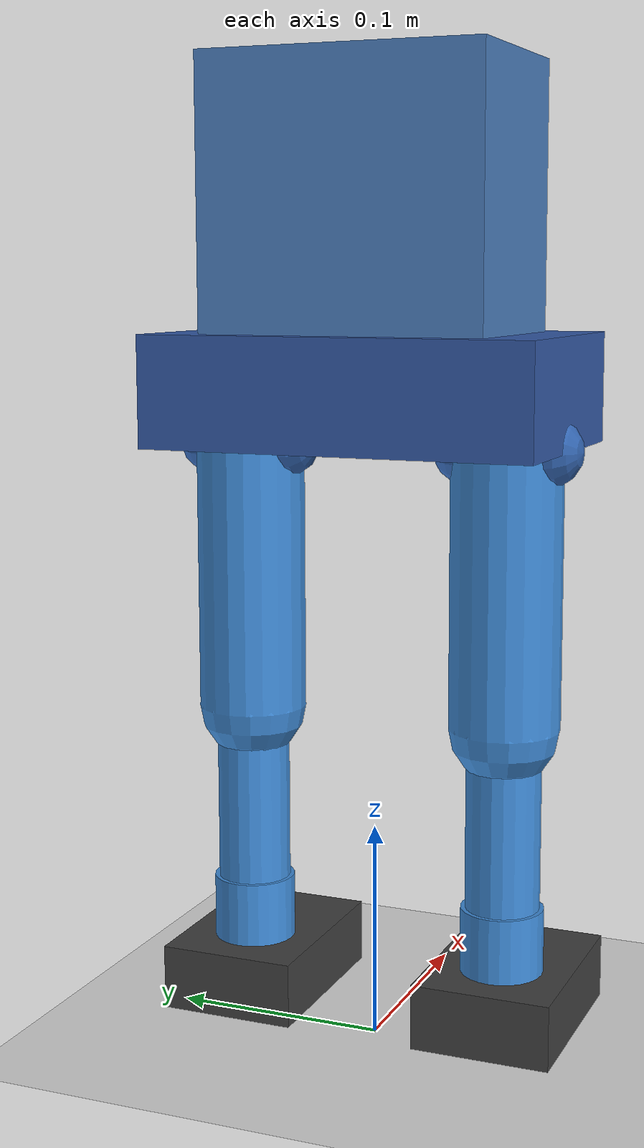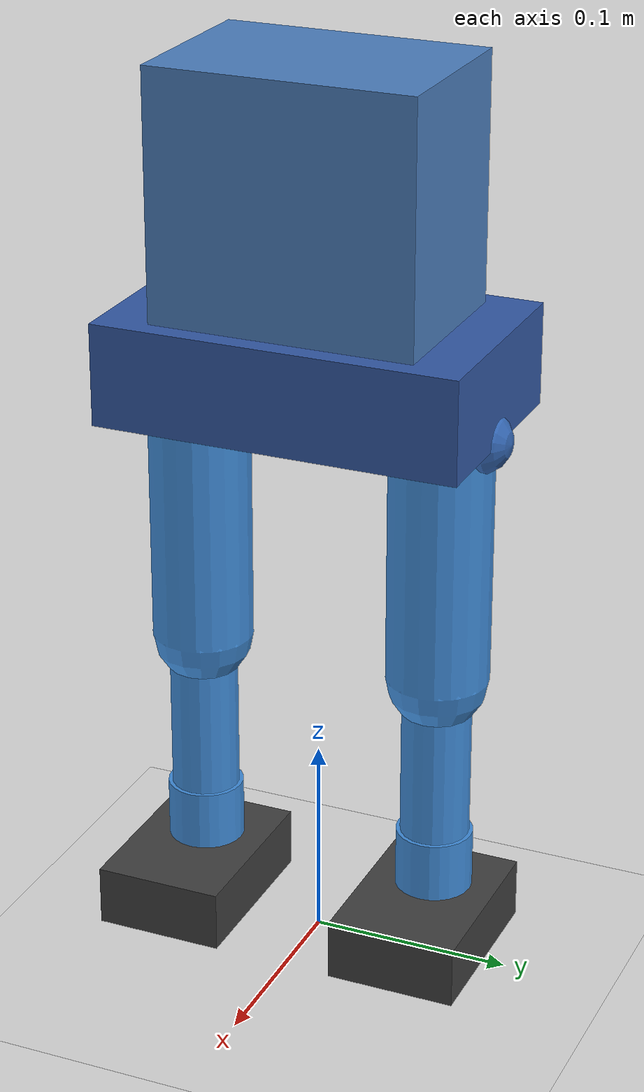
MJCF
<mujoco model="digital_twin_v0_1">
    <compiler angle="degree" autolimits="true"/>

    <option
        timestep="0.002"
        gravity="0 0 -9.81"
        integrator="implicitfast"/>

    <default>
        <joint
            type="hinge"
            damping="0.2"
            armature="0.005"/>

        <geom
            density="500"
            friction="0.8 0.1 0.1"
            rgba="0.25 0.55 0.85 1"/>
    </default>

    <worldbody>
        <light
            pos="0 0 2"
            dir="0 0 -1"/>

        <geom
            name="floor"
            type="plane"
            size="2 2 0.05"
            rgba="0.85 0.85 0.85 1"/>

        <body
            name="pelvis_root"
            pos="0 0 0.303">

            <freejoint name="root_freejoint"/>

            <geom
                name="pelvis_core_geom"
                type="box"
                size="0.025 0.03 0.015"
                density="900"
                rgba="0.16 0.28 0.55 1"/>

            <body name="pelvis">
                <geom
                    name="pelvis_geom"
                    type="box"
                    size="0.055 0.09 0.025"
                    density="900"
                    rgba="0.20 0.35 0.65 1"/>

                <body
                    name="trunk"
                    pos="0 0 0.085">

                    <geom
                        name="trunk_geom"
                        type="box"
                        size="0.045 0.065 0.06"
                        density="600"
                        rgba="0.30 0.50 0.75 1"/>
                </body>

                <body
                    name="left_hip_yaw_link"
                    pos="0 0.062 -0.025">

                    <joint
                        name="left_hip_yaw"
                        axis="0 0 1"
                        range="-30 30"/>

                    <geom
                        name="left_hip_yaw_geom"
                        type="cylinder"
                        size="0.022 0.012"
                        density="650"
                        rgba="0.20 0.40 0.70 1"/>

                    <body name="left_hip_roll_link">
                        <joint
                            name="left_hip_roll"
                            axis="1 0 0"
                            range="-35 35"/>

                        <geom
                            name="left_hip_roll_geom"
                            type="capsule"
                            fromto="0 -0.018 0 0 0.018 0"
                            size="0.016"
                            density="650"
                            rgba="0.20 0.40 0.70 1"/>

                        <body name="left_thigh">
                            <joint
                                name="left_hip_pitch"
                                axis="0 1 0"
                                range="-90 45"/>

                            <geom
                                name="left_thigh_geom"
                                type="capsule"
                                fromto="0 0 0 0 0 -0.125"
                                size="0.025"
                                density="650"/>

                            <body
                                name="left_shank"
                                pos="0 0 -0.125">

                                <joint
                                    name="left_knee_pitch"
                                    axis="0 1 0"
                                    range="0 130"/>

                                <geom
                                    name="left_shank_geom"
                                    type="capsule"
                                    fromto="0 0 0 0 0 -0.105"
                                    size="0.017"
                                    density="450"/>

                                <body
                                    name="left_ankle"
                                    pos="0 0 -0.105">

                                    <joint
                                        name="left_ankle_roll"
                                        axis="1 0 0"
                                        range="-30 30"/>

                                    <geom
                                        name="left_ankle_geom"
                                        type="cylinder"
                                        size="0.019 0.022"
                                        density="550"/>

                                    <body name="left_foot">
                                        <joint
                                            name="left_ankle_pitch"
                                            axis="0 1 0"
                                            range="-45 45"/>

                                        <geom
                                            name="left_foot_geom"
                                            type="box"
                                            pos="0.012 0 -0.023"
                                            size="0.045 0.032 0.015"
                                            density="550"
                                            rgba="0.25 0.25 0.25 1"/>
                                    </body>
                                </body>
                            </body>
                        </body>
                    </body>
                </body>

                <body
                    name="right_hip_yaw_link"
                    pos="0 -0.062 -0.025">

                    <joint
                        name="right_hip_yaw"
                        axis="0 0 1"
                        range="-30 30"/>

                    <geom
                        name="right_hip_yaw_geom"
                        type="cylinder"
                        size="0.022 0.012"
                        density="650"
                        rgba="0.20 0.40 0.70 1"/>

                    <body name="right_hip_roll_link">
                        <joint
                            name="right_hip_roll"
                            axis="1 0 0"
                            range="-35 35"/>

                        <geom
                            name="right_hip_roll_geom"
                            type="capsule"
                            fromto="0 -0.018 0 0 0.018 0"
                            size="0.016"
                            density="650"
                            rgba="0.20 0.40 0.70 1"/>

                        <body name="right_thigh">
                            <joint
                                name="right_hip_pitch"
                                axis="0 1 0"
                                range="-90 45"/>

                            <geom
                                name="right_thigh_geom"
                                type="capsule"
                                fromto="0 0 0 0 0 -0.125"
                                size="0.025"
                                density="650"/>

                            <body
                                name="right_shank"
                                pos="0 0 -0.125">

                                <joint
                                    name="right_knee_pitch"
                                    axis="0 1 0"
                                    range="0 130"/>

                                <geom
                                    name="right_shank_geom"
                                    type="capsule"
                                    fromto="0 0 0 0 0 -0.105"
                                    size="0.017"
                                    density="450"/>

                                <body
                                    name="right_ankle"
                                    pos="0 0 -0.105">

                                    <joint
                                        name="right_ankle_roll"
                                        axis="1 0 0"
                                        range="-30 30"/>

                                    <geom
                                        name="right_ankle_geom"
                                        type="cylinder"
                                        size="0.019 0.022"
                                        density="550"/>

                                    <body name="right_foot">
                                        <joint
                                            name="right_ankle_pitch"
                                            axis="0 1 0"
                                            range="-45 45"/>

                                        <geom
                                            name="right_foot_geom"
                                            type="box"
                                            pos="0.012 0 -0.023"
                                            size="0.045 0.032 0.015"
                                            density="550"
                                            rgba="0.25 0.25 0.25 1"/>
                                    </body>
                                </body>
                            </body>
                        </body>
                    </body>
                </body>
            </body>
        </body>
    </worldbody>

    <equality>
        <joint
            name="left_hip_yaw_lock"
            joint1="left_hip_yaw"
            polycoef="0 0 0 0 0"/>

        <joint
            name="right_hip_yaw_lock"
            joint1="right_hip_yaw"
            polycoef="0 0 0 0 0"/>
    </equality>

    <actuator>
        <position
            name="left_hip_roll_position"
            joint="left_hip_roll"
            kp="25"
            ctrlrange="-0.610865 0.610865"/>

        <position
            name="left_hip_pitch_position"
            joint="left_hip_pitch"
            kp="25"
            ctrlrange="-1.570796 0.785398"/>

        <position
            name="left_knee_pitch_position"
            joint="left_knee_pitch"
            kp="25"
            ctrlrange="0 2.268928"/>

        <position
            name="left_ankle_roll_position"
            joint="left_ankle_roll"
            kp="20"
            ctrlrange="-0.523599 0.523599"/>

        <position
            name="left_ankle_pitch_position"
            joint="left_ankle_pitch"
            kp="20"
            ctrlrange="-0.785398 0.785398"/>

        <position
            name="right_hip_roll_position"
            joint="right_hip_roll"
            kp="25"
            ctrlrange="-0.610865 0.610865"/>

        <position
            name="right_hip_pitch_position"
            joint="right_hip_pitch"
            kp="25"
            ctrlrange="-1.570796 0.785398"/>

        <position
            name="right_knee_pitch_position"
            joint="right_knee_pitch"
            kp="25"
            ctrlrange="0 2.268928"/>

        <position
            name="right_ankle_roll_position"
            joint="right_ankle_roll"
            kp="20"
            ctrlrange="-0.523599 0.523599"/>

        <position
            name="right_ankle_pitch_position"
            joint="right_ankle_pitch"
            kp="20"
            ctrlrange="-0.785398 0.785398"/>
    </actuator>
</mujoco>
